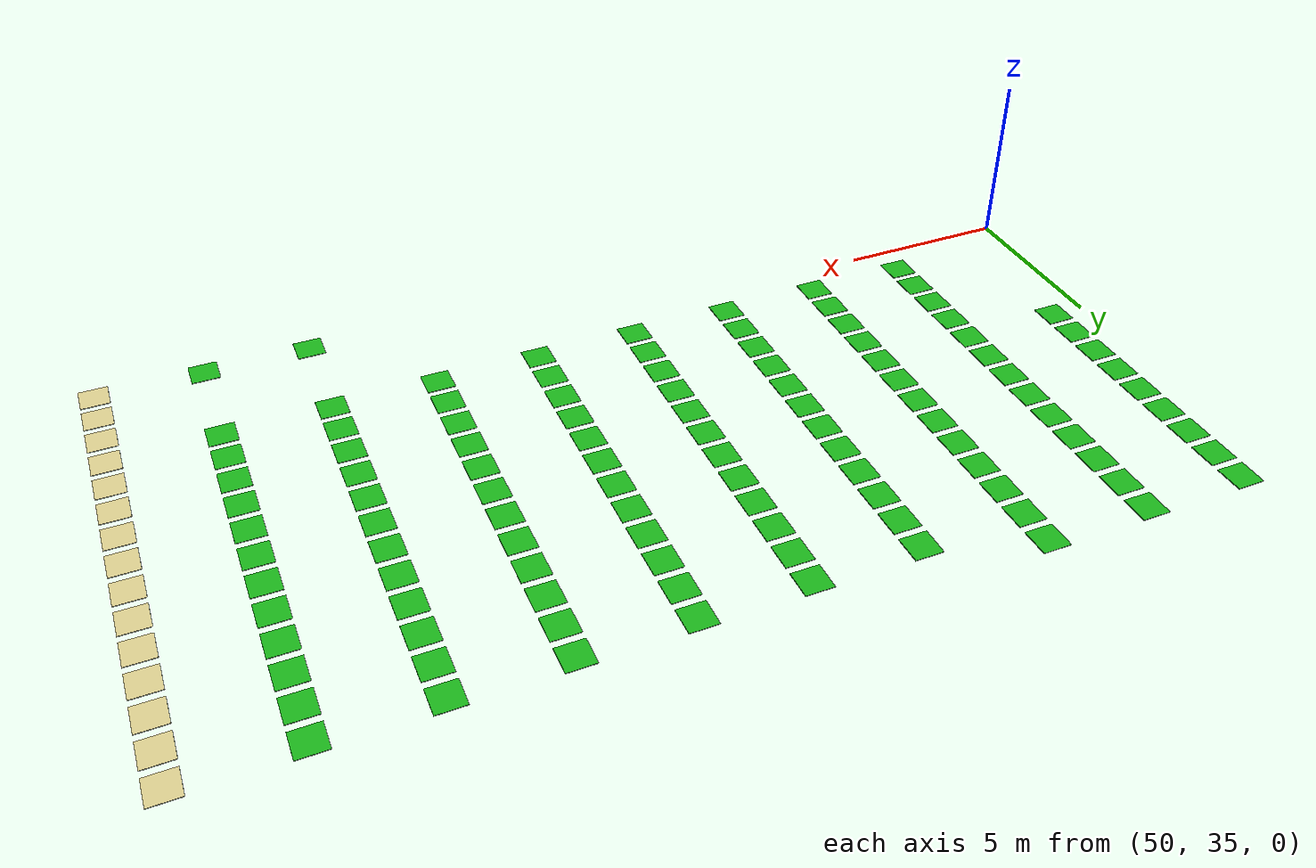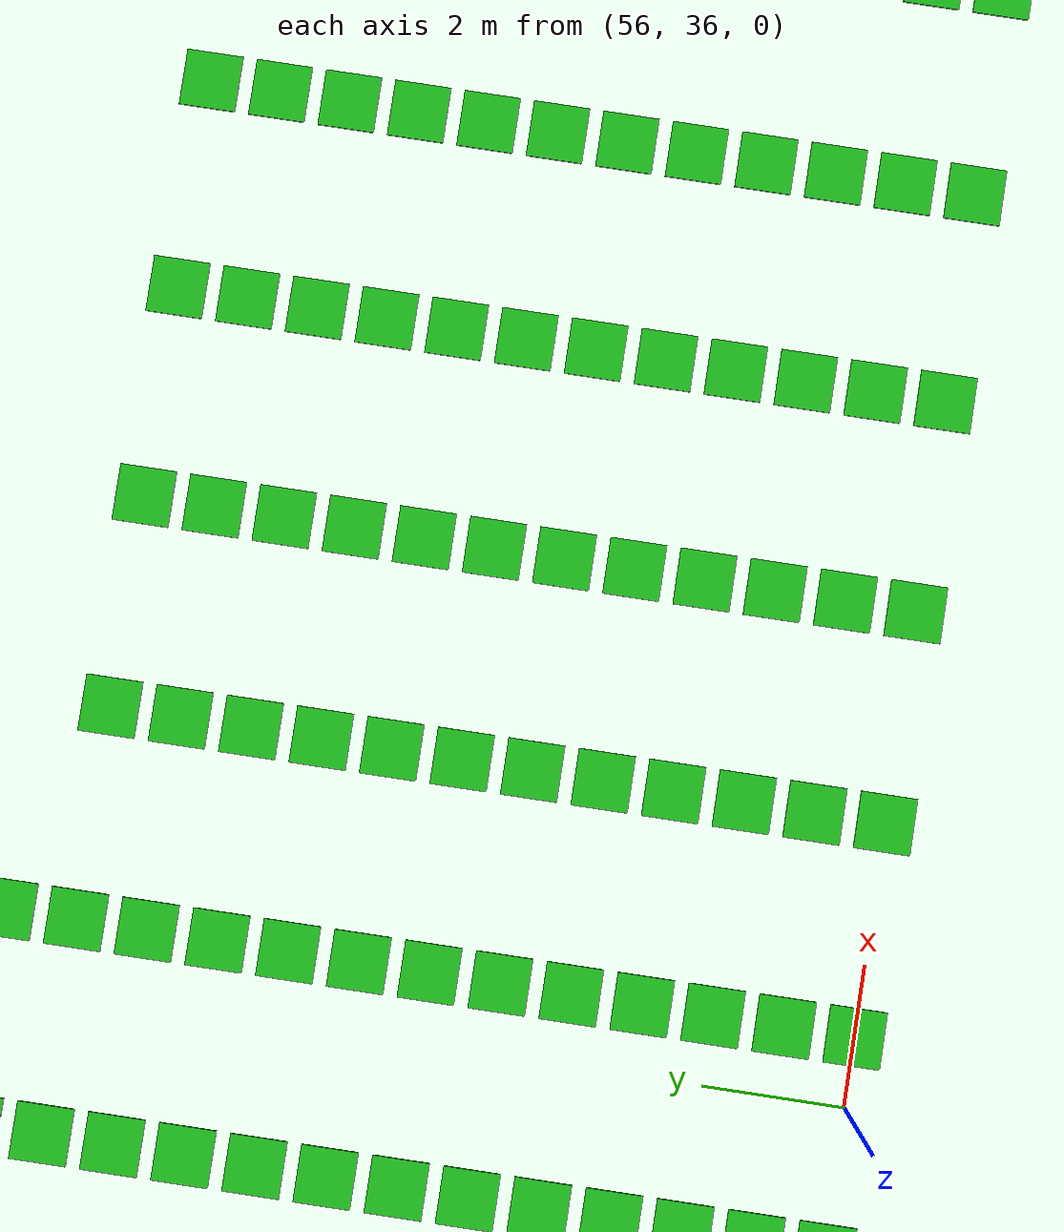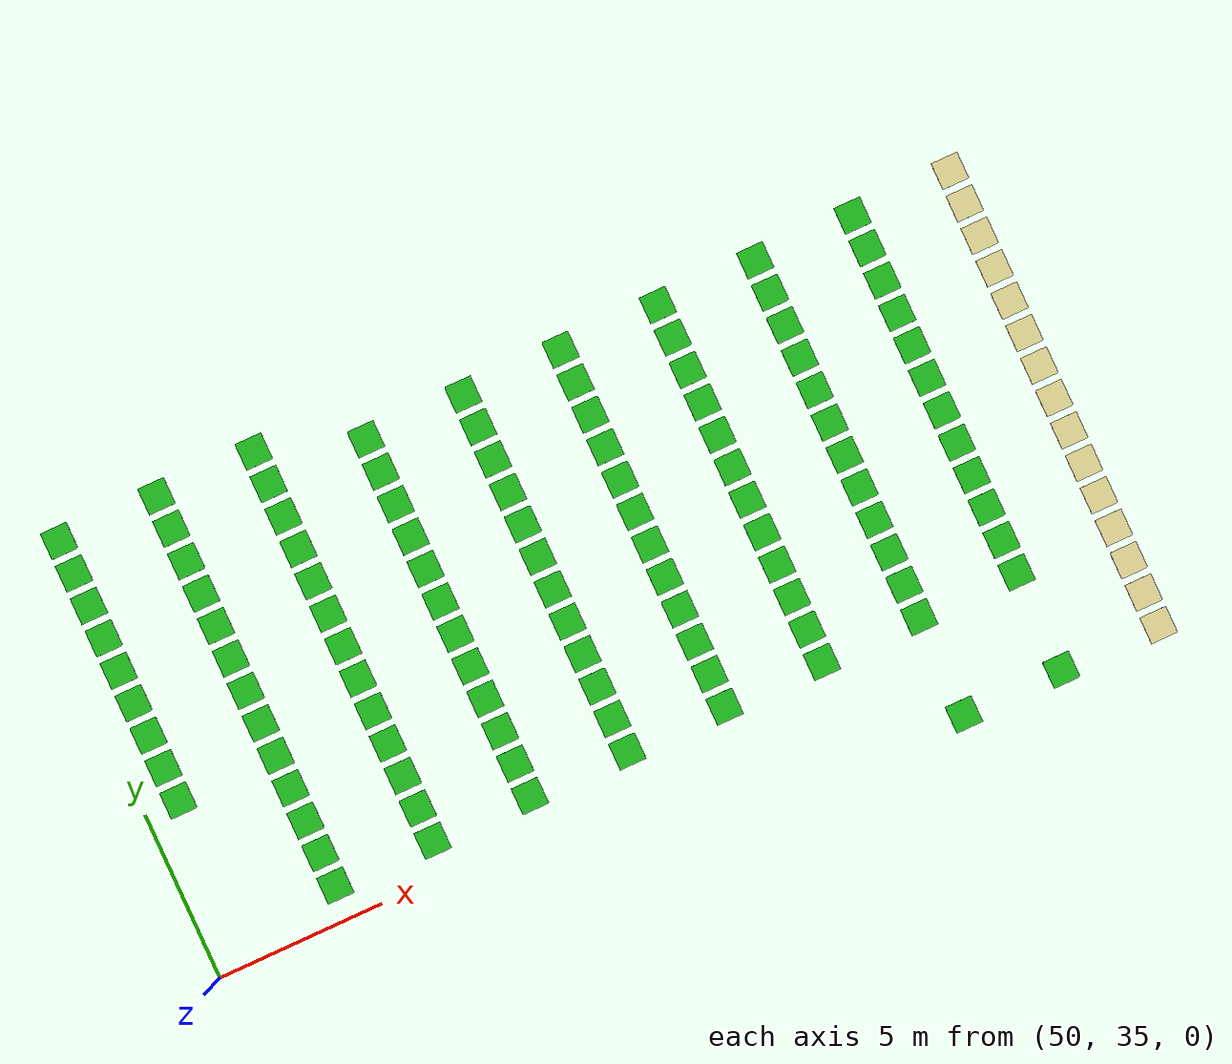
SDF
<sdf version="1.10">
 <world name="my_map">
  <model name="shelf_1192">
   <static>true</static>
   <pose>51.0
        48.0
        0.02
        0 0 0</pose>
   <link name="link">
    <visual name="visual">
     <geometry><box><size>0.8
                0.8
                0.02</size></box></geometry>
     <material><ambient>0.10 0.70 0.10 1</ambient><diffuse>0.10 0.70 0.10 1</diffuse></material>
    </visual>
   </link>
  </model>
  <model name="shelf_1193">
   <static>true</static>
   <pose>54.0
        48.0
        0.02
        0 0 0</pose>
   <link name="link">
    <visual name="visual">
     <geometry><box><size>0.8
                0.8
                0.02</size></box></geometry>
     <material><ambient>0.10 0.70 0.10 1</ambient><diffuse>0.10 0.70 0.10 1</diffuse></material>
    </visual>
   </link>
  </model>
  <model name="shelf_1194">
   <static>true</static>
   <pose>57.0
        48.0
        0.02
        0 0 0</pose>
   <link name="link">
    <visual name="visual">
     <geometry><box><size>0.8
                0.8
                0.02</size></box></geometry>
     <material><ambient>0.10 0.70 0.10 1</ambient><diffuse>0.10 0.70 0.10 1</diffuse></material>
    </visual>
   </link>
  </model>
  <model name="shelf_1217">
   <static>true</static>
   <pose>51.0
        47.0
        0.02
        0 0 0</pose>
   <link name="link">
    <visual name="visual">
     <geometry><box><size>0.8
                0.8
                0.02</size></box></geometry>
     <material><ambient>0.10 0.70 0.10 1</ambient><diffuse>0.10 0.70 0.10 1</diffuse></material>
    </visual>
   </link>
  </model>
  <model name="shelf_1218">
   <static>true</static>
   <pose>54.0
        47.0
        0.02
        0 0 0</pose>
   <link name="link">
    <visual name="visual">
     <geometry><box><size>0.8
                0.8
                0.02</size></box></geometry>
     <material><ambient>0.10 0.70 0.10 1</ambient><diffuse>0.10 0.70 0.10 1</diffuse></material>
    </visual>
   </link>
  </model>
  <model name="shelf_1219">
   <static>true</static>
   <pose>57.0
        47.0
        0.02
        0 0 0</pose>
   <link name="link">
    <visual name="visual">
     <geometry><box><size>0.8
                0.8
                0.02</size></box></geometry>
     <material><ambient>0.10 0.70 0.10 1</ambient><diffuse>0.10 0.70 0.10 1</diffuse></material>
    </visual>
   </link>
  </model>
  <model name="shelf_1220">
   <static>true</static>
   <pose>60.0
        47.0
        0.02
        0 0 0</pose>
   <link name="link">
    <visual name="visual">
     <geometry><box><size>0.8
                0.8
                0.02</size></box></geometry>
     <material><ambient>0.10 0.70 0.10 1</ambient><diffuse>0.10 0.70 0.10 1</diffuse></material>
    </visual>
   </link>
  </model>
  <model name="shelf_1221">
   <static>true</static>
   <pose>63.0
        47.0
        0.02
        0 0 0</pose>
   <link name="link">
    <visual name="visual">
     <geometry><box><size>0.8
                0.8
                0.02</size></box></geometry>
     <material><ambient>0.10 0.70 0.10 1</ambient><diffuse>0.10 0.70 0.10 1</diffuse></material>
    </visual>
   </link>
  </model>
  <model name="shelf_1222">
   <static>true</static>
   <pose>66.0
        47.0
        0.02
        0 0 0</pose>
   <link name="link">
    <visual name="visual">
     <geometry><box><size>0.8
                0.8
                0.02</size></box></geometry>
     <material><ambient>0.10 0.70 0.10 1</ambient><diffuse>0.10 0.70 0.10 1</diffuse></material>
    </visual>
   </link>
  </model>
  <model name="shelf_1223">
   <static>true</static>
   <pose>69.0
        47.0
        0.02
        0 0 0</pose>
   <link name="link">
    <visual name="visual">
     <geometry><box><size>0.8
                0.8
                0.02</size></box></geometry>
     <material><ambient>0.10 0.70 0.10 1</ambient><diffuse>0.10 0.70 0.10 1</diffuse></material>
    </visual>
   </link>
  </model>
  <model name="shelf_1224">
   <static>true</static>
   <pose>72.0
        47.0
        0.02
        0 0 0</pose>
   <link name="link">
    <visual name="visual">
     <geometry><box><size>0.8
                0.8
                0.02</size></box></geometry>
     <material><ambient>0.10 0.70 0.10 1</ambient><diffuse>0.10 0.70 0.10 1</diffuse></material>
    </visual>
   </link>
  </model>
  <model name="shelf_1225">
   <static>true</static>
   <pose>75.0
        47.0
        0.02
        0 0 0</pose>
   <link name="link">
    <visual name="visual">
     <geometry><box><size>0.8
                0.8
                0.02</size></box></geometry>
     <material><ambient>0.10 0.70 0.10 1</ambient><diffuse>0.10 0.70 0.10 1</diffuse></material>
    </visual>
   </link>
  </model>
  <model name="staging_110">
   <static>true</static>
   <pose>78.0
        47.0
        0.02
        0 0 0</pose>
   <link name="link">
    <visual name="visual">
     <geometry><box><size>0.8
                0.8
                0.02</size></box></geometry>
     <material><ambient>0.85 0.80 0.55 1</ambient><diffuse>0.85 0.80 0.55 1</diffuse></material>
    </visual>
   </link>
  </model>
  <model name="shelf_1242">
   <static>true</static>
   <pose>51.0
        46.0
        0.02
        0 0 0</pose>
   <link name="link">
    <visual name="visual">
     <geometry><box><size>0.8
                0.8
                0.02</size></box></geometry>
     <material><ambient>0.10 0.70 0.10 1</ambient><diffuse>0.10 0.70 0.10 1</diffuse></material>
    </visual>
   </link>
  </model>
  <model name="shelf_1243">
   <static>true</static>
   <pose>54.0
        46.0
        0.02
        0 0 0</pose>
   <link name="link">
    <visual name="visual">
     <geometry><box><size>0.8
                0.8
                0.02</size></box></geometry>
     <material><ambient>0.10 0.70 0.10 1</ambient><diffuse>0.10 0.70 0.10 1</diffuse></material>
    </visual>
   </link>
  </model>
  <model name="shelf_1244">
   <static>true</static>
   <pose>57.0
        46.0
        0.02
        0 0 0</pose>
   <link name="link">
    <visual name="visual">
     <geometry><box><size>0.8
                0.8
                0.02</size></box></geometry>
     <material><ambient>0.10 0.70 0.10 1</ambient><diffuse>0.10 0.70 0.10 1</diffuse></material>
    </visual>
   </link>
  </model>
  <model name="shelf_1245">
   <static>true</static>
   <pose>60.0
        46.0
        0.02
        0 0 0</pose>
   <link name="link">
    <visual name="visual">
     <geometry><box><size>0.8
                0.8
                0.02</size></box></geometry>
     <material><ambient>0.10 0.70 0.10 1</ambient><diffuse>0.10 0.70 0.10 1</diffuse></material>
    </visual>
   </link>
  </model>
  <model name="shelf_1246">
   <static>true</static>
   <pose>63.0
        46.0
        0.02
        0 0 0</pose>
   <link name="link">
    <visual name="visual">
     <geometry><box><size>0.8
                0.8
                0.02</size></box></geometry>
     <material><ambient>0.10 0.70 0.10 1</ambient><diffuse>0.10 0.70 0.10 1</diffuse></material>
    </visual>
   </link>
  </model>
  <model name="shelf_1247">
   <static>true</static>
   <pose>66.0
        46.0
        0.02
        0 0 0</pose>
   <link name="link">
    <visual name="visual">
     <geometry><box><size>0.8
                0.8
                0.02</size></box></geometry>
     <material><ambient>0.10 0.70 0.10 1</ambient><diffuse>0.10 0.70 0.10 1</diffuse></material>
    </visual>
   </link>
  </model>
  <model name="shelf_1248">
   <static>true</static>
   <pose>69.0
        46.0
        0.02
        0 0 0</pose>
   <link name="link">
    <visual name="visual">
     <geometry><box><size>0.8
                0.8
                0.02</size></box></geometry>
     <material><ambient>0.10 0.70 0.10 1</ambient><diffuse>0.10 0.70 0.10 1</diffuse></material>
    </visual>
   </link>
  </model>
  <model name="shelf_1249">
   <static>true</static>
   <pose>72.0
        46.0
        0.02
        0 0 0</pose>
   <link name="link">
    <visual name="visual">
     <geometry><box><size>0.8
                0.8
                0.02</size></box></geometry>
     <material><ambient>0.10 0.70 0.10 1</ambient><diffuse>0.10 0.70 0.10 1</diffuse></material>
    </visual>
   </link>
  </model>
  <model name="shelf_1250">
   <static>true</static>
   <pose>75.0
        46.0
        0.02
        0 0 0</pose>
   <link name="link">
    <visual name="visual">
     <geometry><box><size>0.8
                0.8
                0.02</size></box></geometry>
     <material><ambient>0.10 0.70 0.10 1</ambient><diffuse>0.10 0.70 0.10 1</diffuse></material>
    </visual>
   </link>
  </model>
  <model name="staging_112">
   <static>true</static>
   <pose>78.0
        46.0
        0.02
        0 0 0</pose>
   <link name="link">
    <visual name="visual">
     <geometry><box><size>0.8
                0.8
                0.02</size></box></geometry>
     <material><ambient>0.85 0.80 0.55 1</ambient><diffuse>0.85 0.80 0.55 1</diffuse></material>
    </visual>
   </link>
  </model>
  <model name="shelf_1267">
   <static>true</static>
   <pose>51.0
        45.0
        0.02
        0 0 0</pose>
   <link name="link">
    <visual name="visual">
     <geometry><box><size>0.8
                0.8
                0.02</size></box></geometry>
     <material><ambient>0.10 0.70 0.10 1</ambient><diffuse>0.10 0.70 0.10 1</diffuse></material>
    </visual>
   </link>
  </model>
  <model name="shelf_1268">
   <static>true</static>
   <pose>54.0
        45.0
        0.02
        0 0 0</pose>
   <link name="link">
    <visual name="visual">
     <geometry><box><size>0.8
                0.8
                0.02</size></box></geometry>
     <material><ambient>0.10 0.70 0.10 1</ambient><diffuse>0.10 0.70 0.10 1</diffuse></material>
    </visual>
   </link>
  </model>
  <model name="shelf_1269">
   <static>true</static>
   <pose>57.0
        45.0
        0.02
        0 0 0</pose>
   <link name="link">
    <visual name="visual">
     <geometry><box><size>0.8
                0.8
                0.02</size></box></geometry>
     <material><ambient>0.10 0.70 0.10 1</ambient><diffuse>0.10 0.70 0.10 1</diffuse></material>
    </visual>
   </link>
  </model>
  <model name="shelf_1270">
   <static>true</static>
   <pose>60.0
        45.0
        0.02
        0 0 0</pose>
   <link name="link">
    <visual name="visual">
     <geometry><box><size>0.8
                0.8
                0.02</size></box></geometry>
     <material><ambient>0.10 0.70 0.10 1</ambient><diffuse>0.10 0.70 0.10 1</diffuse></material>
    </visual>
   </link>
  </model>
  <model name="shelf_1271">
   <static>true</static>
   <pose>63.0
        45.0
        0.02
        0 0 0</pose>
   <link name="link">
    <visual name="visual">
     <geometry><box><size>0.8
                0.8
                0.02</size></box></geometry>
     <material><ambient>0.10 0.70 0.10 1</ambient><diffuse>0.10 0.70 0.10 1</diffuse></material>
    </visual>
   </link>
  </model>
  <model name="shelf_1272">
   <static>true</static>
   <pose>66.0
        45.0
        0.02
        0 0 0</pose>
   <link name="link">
    <visual name="visual">
     <geometry><box><size>0.8
                0.8
                0.02</size></box></geometry>
     <material><ambient>0.10 0.70 0.10 1</ambient><diffuse>0.10 0.70 0.10 1</diffuse></material>
    </visual>
   </link>
  </model>
  <model name="shelf_1273">
   <static>true</static>
   <pose>69.0
        45.0
        0.02
        0 0 0</pose>
   <link name="link">
    <visual name="visual">
     <geometry><box><size>0.8
                0.8
                0.02</size></box></geometry>
     <material><ambient>0.10 0.70 0.10 1</ambient><diffuse>0.10 0.70 0.10 1</diffuse></material>
    </visual>
   </link>
  </model>
  <model name="shelf_1274">
   <static>true</static>
   <pose>72.0
        45.0
        0.02
        0 0 0</pose>
   <link name="link">
    <visual name="visual">
     <geometry><box><size>0.8
                0.8
                0.02</size></box></geometry>
     <material><ambient>0.10 0.70 0.10 1</ambient><diffuse>0.10 0.70 0.10 1</diffuse></material>
    </visual>
   </link>
  </model>
  <model name="shelf_1275">
   <static>true</static>
   <pose>75.0
        45.0
        0.02
        0 0 0</pose>
   <link name="link">
    <visual name="visual">
     <geometry><box><size>0.8
                0.8
                0.02</size></box></geometry>
     <material><ambient>0.10 0.70 0.10 1</ambient><diffuse>0.10 0.70 0.10 1</diffuse></material>
    </visual>
   </link>
  </model>
  <model name="staging_114">
   <static>true</static>
   <pose>78.0
        45.0
        0.02
        0 0 0</pose>
   <link name="link">
    <visual name="visual">
     <geometry><box><size>0.8
                0.8
                0.02</size></box></geometry>
     <material><ambient>0.85 0.80 0.55 1</ambient><diffuse>0.85 0.80 0.55 1</diffuse></material>
    </visual>
   </link>
  </model>
  <model name="shelf_1292">
   <static>true</static>
   <pose>51.0
        44.0
        0.02
        0 0 0</pose>
   <link name="link">
    <visual name="visual">
     <geometry><box><size>0.8
                0.8
                0.02</size></box></geometry>
     <material><ambient>0.10 0.70 0.10 1</ambient><diffuse>0.10 0.70 0.10 1</diffuse></material>
    </visual>
   </link>
  </model>
  <model name="shelf_1293">
   <static>true</static>
   <pose>54.0
        44.0
        0.02
        0 0 0</pose>
   <link name="link">
    <visual name="visual">
     <geometry><box><size>0.8
                0.8
                0.02</size></box></geometry>
     <material><ambient>0.10 0.70 0.10 1</ambient><diffuse>0.10 0.70 0.10 1</diffuse></material>
    </visual>
   </link>
  </model>
  <model name="shelf_1294">
   <static>true</static>
   <pose>57.0
        44.0
        0.02
        0 0 0</pose>
   <link name="link">
    <visual name="visual">
     <geometry><box><size>0.8
                0.8
                0.02</size></box></geometry>
     <material><ambient>0.10 0.70 0.10 1</ambient><diffuse>0.10 0.70 0.10 1</diffuse></material>
    </visual>
   </link>
  </model>
  <model name="shelf_1295">
   <static>true</static>
   <pose>60.0
        44.0
        0.02
        0 0 0</pose>
   <link name="link">
    <visual name="visual">
     <geometry><box><size>0.8
                0.8
                0.02</size></box></geometry>
     <material><ambient>0.10 0.70 0.10 1</ambient><diffuse>0.10 0.70 0.10 1</diffuse></material>
    </visual>
   </link>
  </model>
  <model name="shelf_1296">
   <static>true</static>
   <pose>63.0
        44.0
        0.02
        0 0 0</pose>
   <link name="link">
    <visual name="visual">
     <geometry><box><size>0.8
                0.8
                0.02</size></box></geometry>
     <material><ambient>0.10 0.70 0.10 1</ambient><diffuse>0.10 0.70 0.10 1</diffuse></material>
    </visual>
   </link>
  </model>
  <model name="shelf_1297">
   <static>true</static>
   <pose>66.0
        44.0
        0.02
        0 0 0</pose>
   <link name="link">
    <visual name="visual">
     <geometry><box><size>0.8
                0.8
                0.02</size></box></geometry>
     <material><ambient>0.10 0.70 0.10 1</ambient><diffuse>0.10 0.70 0.10 1</diffuse></material>
    </visual>
   </link>
  </model>
  <model name="shelf_1298">
   <static>true</static>
   <pose>69.0
        44.0
        0.02
        0 0 0</pose>
   <link name="link">
    <visual name="visual">
     <geometry><box><size>0.8
                0.8
                0.02</size></box></geometry>
     <material><ambient>0.10 0.70 0.10 1</ambient><diffuse>0.10 0.70 0.10 1</diffuse></material>
    </visual>
   </link>
  </model>
  <model name="shelf_1299">
   <static>true</static>
   <pose>72.0
        44.0
        0.02
        0 0 0</pose>
   <link name="link">
    <visual name="visual">
     <geometry><box><size>0.8
                0.8
                0.02</size></box></geometry>
     <material><ambient>0.10 0.70 0.10 1</ambient><diffuse>0.10 0.70 0.10 1</diffuse></material>
    </visual>
   </link>
  </model>
  <model name="shelf_1300">
   <static>true</static>
   <pose>75.0
        44.0
        0.02
        0 0 0</pose>
   <link name="link">
    <visual name="visual">
     <geometry><box><size>0.8
                0.8
                0.02</size></box></geometry>
     <material><ambient>0.10 0.70 0.10 1</ambient><diffuse>0.10 0.70 0.10 1</diffuse></material>
    </visual>
   </link>
  </model>
  <model name="staging_116">
   <static>true</static>
   <pose>78.0
        44.0
        0.02
        0 0 0</pose>
   <link name="link">
    <visual name="visual">
     <geometry><box><size>0.8
                0.8
                0.02</size></box></geometry>
     <material><ambient>0.85 0.80 0.55 1</ambient><diffuse>0.85 0.80 0.55 1</diffuse></material>
    </visual>
   </link>
  </model>
  <model name="shelf_1317">
   <static>true</static>
   <pose>51.0
        43.0
        0.02
        0 0 0</pose>
   <link name="link">
    <visual name="visual">
     <geometry><box><size>0.8
                0.8
                0.02</size></box></geometry>
     <material><ambient>0.10 0.70 0.10 1</ambient><diffuse>0.10 0.70 0.10 1</diffuse></material>
    </visual>
   </link>
  </model>
  <model name="shelf_1318">
   <static>true</static>
   <pose>54.0
        43.0
        0.02
        0 0 0</pose>
   <link name="link">
    <visual name="visual">
     <geometry><box><size>0.8
                0.8
                0.02</size></box></geometry>
     <material><ambient>0.10 0.70 0.10 1</ambient><diffuse>0.10 0.70 0.10 1</diffuse></material>
    </visual>
   </link>
  </model>
  <model name="shelf_1319">
   <static>true</static>
   <pose>57.0
        43.0
        0.02
        0 0 0</pose>
   <link name="link">
    <visual name="visual">
     <geometry><box><size>0.8
                0.8
                0.02</size></box></geometry>
     <material><ambient>0.10 0.70 0.10 1</ambient><diffuse>0.10 0.70 0.10 1</diffuse></material>
    </visual>
   </link>
  </model>
  <model name="shelf_1320">
   <static>true</static>
   <pose>60.0
        43.0
        0.02
        0 0 0</pose>
   <link name="link">
    <visual name="visual">
     <geometry><box><size>0.8
                0.8
                0.02</size></box></geometry>
     <material><ambient>0.10 0.70 0.10 1</ambient><diffuse>0.10 0.70 0.10 1</diffuse></material>
    </visual>
   </link>
  </model>
  <model name="shelf_1321">
   <static>true</static>
   <pose>63.0
        43.0
        0.02
        0 0 0</pose>
   <link name="link">
    <visual name="visual">
     <geometry><box><size>0.8
                0.8
                0.02</size></box></geometry>
     <material><ambient>0.10 0.70 0.10 1</ambient><diffuse>0.10 0.70 0.10 1</diffuse></material>
    </visual>
   </link>
  </model>
  <model name="shelf_1322">
   <static>true</static>
   <pose>66.0
        43.0
        0.02
        0 0 0</pose>
   <link name="link">
    <visual name="visual">
     <geometry><box><size>0.8
                0.8
                0.02</size></box></geometry>
     <material><ambient>0.10 0.70 0.10 1</ambient><diffuse>0.10 0.70 0.10 1</diffuse></material>
    </visual>
   </link>
  </model>
  <model name="shelf_1323">
   <static>true</static>
   <pose>69.0
        43.0
        0.02
        0 0 0</pose>
   <link name="link">
    <visual name="visual">
     <geometry><box><size>0.8
                0.8
                0.02</size></box></geometry>
     <material><ambient>0.10 0.70 0.10 1</ambient><diffuse>0.10 0.70 0.10 1</diffuse></material>
    </visual>
   </link>
  </model>
  <model name="shelf_1324">
   <static>true</static>
   <pose>72.0
        43.0
        0.02
        0 0 0</pose>
   <link name="link">
    <visual name="visual">
     <geometry><box><size>0.8
                0.8
                0.02</size></box></geometry>
     <material><ambient>0.10 0.70 0.10 1</ambient><diffuse>0.10 0.70 0.10 1</diffuse></material>
    </visual>
   </link>
  </model>
  <model name="shelf_1325">
   <static>true</static>
   <pose>75.0
        43.0
        0.02
        0 0 0</pose>
   <link name="link">
    <visual name="visual">
     <geometry><box><size>0.8
                0.8
                0.02</size></box></geometry>
     <material><ambient>0.10 0.70 0.10 1</ambient><diffuse>0.10 0.70 0.10 1</diffuse></material>
    </visual>
   </link>
  </model>
  <model name="staging_118">
   <static>true</static>
   <pose>78.0
        43.0
        0.02
        0 0 0</pose>
   <link name="link">
    <visual name="visual">
     <geometry><box><size>0.8
                0.8
                0.02</size></box></geometry>
     <material><ambient>0.85 0.80 0.55 1</ambient><diffuse>0.85 0.80 0.55 1</diffuse></material>
    </visual>
   </link>
  </model>
  <model name="shelf_1342">
   <static>true</static>
   <pose>51.0
        42.0
        0.02
        0 0 0</pose>
   <link name="link">
    <visual name="visual">
     <geometry><box><size>0.8
                0.8
                0.02</size></box></geometry>
     <material><ambient>0.10 0.70 0.10 1</ambient><diffuse>0.10 0.70 0.10 1</diffuse></material>
    </visual>
   </link>
  </model>
  <model name="shelf_1343">
   <static>true</static>
   <pose>54.0
        42.0
        0.02
        0 0 0</pose>
   <link name="link">
    <visual name="visual">
     <geometry><box><size>0.8
                0.8
                0.02</size></box></geometry>
     <material><ambient>0.10 0.70 0.10 1</ambient><diffuse>0.10 0.70 0.10 1</diffuse></material>
    </visual>
   </link>
  </model>
  <model name="shelf_1344">
   <static>true</static>
   <pose>57.0
        42.0
        0.02
        0 0 0</pose>
   <link name="link">
    <visual name="visual">
     <geometry><box><size>0.8
                0.8
                0.02</size></box></geometry>
     <material><ambient>0.10 0.70 0.10 1</ambient><diffuse>0.10 0.70 0.10 1</diffuse></material>
    </visual>
   </link>
  </model>
  <model name="shelf_1345">
   <static>true</static>
   <pose>60.0
        42.0
        0.02
        0 0 0</pose>
   <link name="link">
    <visual name="visual">
     <geometry><box><size>0.8
                0.8
                0.02</size></box></geometry>
     <material><ambient>0.10 0.70 0.10 1</ambient><diffuse>0.10 0.70 0.10 1</diffuse></material>
    </visual>
   </link>
  </model>
  <model name="shelf_1346">
   <static>true</static>
   <pose>63.0
        42.0
        0.02
        0 0 0</pose>
   <link name="link">
    <visual name="visual">
     <geometry><box><size>0.8
                0.8
                0.02</size></box></geometry>
     <material><ambient>0.10 0.70 0.10 1</ambient><diffuse>0.10 0.70 0.10 1</diffuse></material>
    </visual>
   </link>
  </model>
  <model name="shelf_1347">
   <static>true</static>
   <pose>66.0
        42.0
        0.02
        0 0 0</pose>
   <link name="link">
    <visual name="visual">
     <geometry><box><size>0.8
                0.8
                0.02</size></box></geometry>
     <material><ambient>0.10 0.70 0.10 1</ambient><diffuse>0.10 0.70 0.10 1</diffuse></material>
    </visual>
   </link>
  </model>
  <model name="shelf_1348">
   <static>true</static>
   <pose>69.0
        42.0
        0.02
        0 0 0</pose>
   <link name="link">
    <visual name="visual">
     <geometry><box><size>0.8
                0.8
                0.02</size></box></geometry>
     <material><ambient>0.10 0.70 0.10 1</ambient><diffuse>0.10 0.70 0.10 1</diffuse></material>
    </visual>
   </link>
  </model>
  <model name="shelf_1349">
   <static>true</static>
   <pose>72.0
        42.0
        0.02
        0 0 0</pose>
   <link name="link">
    <visual name="visual">
     <geometry><box><size>0.8
                0.8
                0.02</size></box></geometry>
     <material><ambient>0.10 0.70 0.10 1</ambient><diffuse>0.10 0.70 0.10 1</diffuse></material>
    </visual>
   </link>
  </model>
  <model name="shelf_1350">
   <static>true</static>
   <pose>75.0
        42.0
        0.02
        0 0 0</pose>
   <link name="link">
    <visual name="visual">
     <geometry><box><size>0.8
                0.8
                0.02</size></box></geometry>
     <material><ambient>0.10 0.70 0.10 1</ambient><diffuse>0.10 0.70 0.10 1</diffuse></material>
    </visual>
   </link>
  </model>
  <model name="staging_120">
   <static>true</static>
   <pose>78.0
        42.0
        0.02
        0 0 0</pose>
   <link name="link">
    <visual name="visual">
     <geometry><box><size>0.8
                0.8
                0.02</size></box></geometry>
     <material><ambient>0.85 0.80 0.55 1</ambient><diffuse>0.85 0.80 0.55 1</diffuse></material>
    </visual>
   </link>
  </model>
  <model name="shelf_1367">
   <static>true</static>
   <pose>51.0
        41.0
        0.02
        0 0 0</pose>
   <link name="link">
    <visual name="visual">
     <geometry><box><size>0.8
                0.8
                0.02</size></box></geometry>
     <material><ambient>0.10 0.70 0.10 1</ambient><diffuse>0.10 0.70 0.10 1</diffuse></material>
    </visual>
   </link>
  </model>
  <model name="shelf_1368">
   <static>true</static>
   <pose>54.0
        41.0
        0.02
        0 0 0</pose>
   <link name="link">
    <visual name="visual">
     <geometry><box><size>0.8
                0.8
                0.02</size></box></geometry>
     <material><ambient>0.10 0.70 0.10 1</ambient><diffuse>0.10 0.70 0.10 1</diffuse></material>
    </visual>
   </link>
  </model>
  <model name="shelf_1369">
   <static>true</static>
   <pose>57.0
        41.0
        0.02
        0 0 0</pose>
   <link name="link">
    <visual name="visual">
     <geometry><box><size>0.8
                0.8
                0.02</size></box></geometry>
     <material><ambient>0.10 0.70 0.10 1</ambient><diffuse>0.10 0.70 0.10 1</diffuse></material>
    </visual>
   </link>
  </model>
  <model name="shelf_1370">
   <static>true</static>
   <pose>60.0
        41.0
        0.02
        0 0 0</pose>
   <link name="link">
    <visual name="visual">
     <geometry><box><size>0.8
                0.8
                0.02</size></box></geometry>
     <material><ambient>0.10 0.70 0.10 1</ambient><diffuse>0.10 0.70 0.10 1</diffuse></material>
    </visual>
   </link>
  </model>
  <model name="shelf_1371">
   <static>true</static>
   <pose>63.0
        41.0
        0.02
        0 0 0</pose>
   <link name="link">
    <visual name="visual">
     <geometry><box><size>0.8
                0.8
                0.02</size></box></geometry>
     <material><ambient>0.10 0.70 0.10 1</ambient><diffuse>0.10 0.70 0.10 1</diffuse></material>
    </visual>
   </link>
  </model>
  <model name="shelf_1372">
   <static>true</static>
   <pose>66.0
        41.0
        0.02
        0 0 0</pose>
   <link name="link">
    <visual name="visual">
     <geometry><box><size>0.8
                0.8
                0.02</size></box></geometry>
     <material><ambient>0.10 0.70 0.10 1</ambient><diffuse>0.10 0.70 0.10 1</diffuse></material>
    </visual>
   </link>
  </model>
  <model name="shelf_1373">
   <static>true</static>
   <pose>69.0
        41.0
        0.02
        0 0 0</pose>
   <link name="link">
    <visual name="visual">
     <geometry><box><size>0.8
                0.8
                0.02</size></box></geometry>
     <material><ambient>0.10 0.70 0.10 1</ambient><diffuse>0.10 0.70 0.10 1</diffuse></material>
    </visual>
   </link>
  </model>
  <model name="shelf_1374">
   <static>true</static>
   <pose>72.0
        41.0
        0.02
        0 0 0</pose>
   <link name="link">
    <visual name="visual">
     <geometry><box><size>0.8
                0.8
                0.02</size></box></geometry>
     <material><ambient>0.10 0.70 0.10 1</ambient><diffuse>0.10 0.70 0.10 1</diffuse></material>
    </visual>
   </link>
  </model>
  <model name="shelf_1375">
   <static>true</static>
   <pose>75.0
        41.0
        0.02
        0 0 0</pose>
   <link name="link">
    <visual name="visual">
     <geometry><box><size>0.8
                0.8
                0.02</size></box></geometry>
     <material><ambient>0.10 0.70 0.10 1</ambient><diffuse>0.10 0.70 0.10 1</diffuse></material>
    </visual>
   </link>
  </model>
  <model name="staging_122">
   <static>true</static>
   <pose>78.0
        41.0
        0.02
        0 0 0</pose>
   <link name="link">
    <visual name="visual">
     <geometry><box><size>0.8
                0.8
                0.02</size></box></geometry>
     <material><ambient>0.85 0.80 0.55 1</ambient><diffuse>0.85 0.80 0.55 1</diffuse></material>
    </visual>
   </link>
  </model>
  <model name="shelf_1392">
   <static>true</static>
   <pose>51.0
        40.0
        0.02
        0 0 0</pose>
   <link name="link">
    <visual name="visual">
     <geometry><box><size>0.8
                0.8
                0.02</size></box></geometry>
     <material><ambient>0.10 0.70 0.10 1</ambient><diffuse>0.10 0.70 0.10 1</diffuse></material>
    </visual>
   </link>
  </model>
  <model name="shelf_1393">
   <static>true</static>
   <pose>54.0
        40.0
        0.02
        0 0 0</pose>
   <link name="link">
    <visual name="visual">
     <geometry><box><size>0.8
                0.8
                0.02</size></box></geometry>
     <material><ambient>0.10 0.70 0.10 1</ambient><diffuse>0.10 0.70 0.10 1</diffuse></material>
    </visual>
   </link>
  </model>
  <model name="shelf_1394">
   <static>true</static>
   <pose>57.0
        40.0
        0.02
        0 0 0</pose>
   <link name="link">
    <visual name="visual">
     <geometry><box><size>0.8
                0.8
                0.02</size></box></geometry>
     <material><ambient>0.10 0.70 0.10 1</ambient><diffuse>0.10 0.70 0.10 1</diffuse></material>
    </visual>
   </link>
  </model>
  <model name="shelf_1395">
   <static>true</static>
   <pose>60.0
        40.0
        0.02
        0 0 0</pose>
   <link name="link">
    <visual name="visual">
     <geometry><box><size>0.8
                0.8
                0.02</size></box></geometry>
     <material><ambient>0.10 0.70 0.10 1</ambient><diffuse>0.10 0.70 0.10 1</diffuse></material>
    </visual>
   </link>
  </model>
  <model name="shelf_1396">
   <static>true</static>
   <pose>63.0
        40.0
        0.02
        0 0 0</pose>
   <link name="link">
    <visual name="visual">
     <geometry><box><size>0.8
                0.8
                0.02</size></box></geometry>
     <material><ambient>0.10 0.70 0.10 1</ambient><diffuse>0.10 0.70 0.10 1</diffuse></material>
    </visual>
   </link>
  </model>
  <model name="shelf_1397">
   <static>true</static>
   <pose>66.0
        40.0
        0.02
        0 0 0</pose>
   <link name="link">
    <visual name="visual">
     <geometry><box><size>0.8
                0.8
                0.02</size></box></geometry>
     <material><ambient>0.10 0.70 0.10 1</ambient><diffuse>0.10 0.70 0.10 1</diffuse></material>
    </visual>
   </link>
  </model>
  <model name="shelf_1398">
   <static>true</static>
   <pose>69.0
        40.0
        0.02
        0 0 0</pose>
   <link name="link">
    <visual name="visual">
     <geometry><box><size>0.8
                0.8
                0.02</size></box></geometry>
     <material><ambient>0.10 0.70 0.10 1</ambient><diffuse>0.10 0.70 0.10 1</diffuse></material>
    </visual>
   </link>
  </model>
  <model name="shelf_1399">
   <static>true</static>
   <pose>72.0
        40.0
        0.02
        0 0 0</pose>
   <link name="link">
    <visual name="visual">
     <geometry><box><size>0.8
                0.8
                0.02</size></box></geometry>
     <material><ambient>0.10 0.70 0.10 1</ambient><diffuse>0.10 0.70 0.10 1</diffuse></material>
    </visual>
   </link>
  </model>
  <model name="shelf_1400">
   <static>true</static>
   <pose>75.0
        40.0
        0.02
        0 0 0</pose>
   <link name="link">
    <visual name="visual">
     <geometry><box><size>0.8
                0.8
                0.02</size></box></geometry>
     <material><ambient>0.10 0.70 0.10 1</ambient><diffuse>0.10 0.70 0.10 1</diffuse></material>
    </visual>
   </link>
  </model>
  <model name="staging_124">
   <static>true</static>
   <pose>78.0
        40.0
        0.02
        0 0 0</pose>
   <link name="link">
    <visual name="visual">
     <geometry><box><size>0.8
                0.8
                0.02</size></box></geometry>
     <material><ambient>0.85 0.80 0.55 1</ambient><diffuse>0.85 0.80 0.55 1</diffuse></material>
    </visual>
   </link>
  </model>
  <model name="shelf_1418">
   <static>true</static>
   <pose>54.0
        39.0
        0.02
        0 0 0</pose>
   <link name="link">
    <visual name="visual">
     <geometry><box><size>0.8
                0.8
                0.02</size></box></geometry>
     <material><ambient>0.10 0.70 0.10 1</ambient><diffuse>0.10 0.70 0.10 1</diffuse></material>
    </visual>
   </link>
  </model>
  <model name="shelf_1419">
   <static>true</static>
   <pose>57.0
        39.0
        0.02
        0 0 0</pose>
   <link name="link">
    <visual name="visual">
     <geometry><box><size>0.8
                0.8
                0.02</size></box></geometry>
     <material><ambient>0.10 0.70 0.10 1</ambient><diffuse>0.10 0.70 0.10 1</diffuse></material>
    </visual>
   </link>
  </model>
  <model name="shelf_1420">
   <static>true</static>
   <pose>60.0
        39.0
        0.02
        0 0 0</pose>
   <link name="link">
    <visual name="visual">
     <geometry><box><size>0.8
                0.8
                0.02</size></box></geometry>
     <material><ambient>0.10 0.70 0.10 1</ambient><diffuse>0.10 0.70 0.10 1</diffuse></material>
    </visual>
   </link>
  </model>
  <model name="shelf_1421">
   <static>true</static>
   <pose>63.0
        39.0
        0.02
        0 0 0</pose>
   <link name="link">
    <visual name="visual">
     <geometry><box><size>0.8
                0.8
                0.02</size></box></geometry>
     <material><ambient>0.10 0.70 0.10 1</ambient><diffuse>0.10 0.70 0.10 1</diffuse></material>
    </visual>
   </link>
  </model>
  <model name="shelf_1422">
   <static>true</static>
   <pose>66.0
        39.0
        0.02
        0 0 0</pose>
   <link name="link">
    <visual name="visual">
     <geometry><box><size>0.8
                0.8
                0.02</size></box></geometry>
     <material><ambient>0.10 0.70 0.10 1</ambient><diffuse>0.10 0.70 0.10 1</diffuse></material>
    </visual>
   </link>
  </model>
  <model name="shelf_1423">
   <static>true</static>
   <pose>69.0
        39.0
        0.02
        0 0 0</pose>
   <link name="link">
    <visual name="visual">
     <geometry><box><size>0.8
                0.8
                0.02</size></box></geometry>
     <material><ambient>0.10 0.70 0.10 1</ambient><diffuse>0.10 0.70 0.10 1</diffuse></material>
    </visual>
   </link>
  </model>
  <model name="shelf_1424">
   <static>true</static>
   <pose>72.0
        39.0
        0.02
        0 0 0</pose>
   <link name="link">
    <visual name="visual">
     <geometry><box><size>0.8
                0.8
                0.02</size></box></geometry>
     <material><ambient>0.10 0.70 0.10 1</ambient><diffuse>0.10 0.70 0.10 1</diffuse></material>
    </visual>
   </link>
  </model>
  <model name="shelf_1425">
   <static>true</static>
   <pose>75.0
        39.0
        0.02
        0 0 0</pose>
   <link name="link">
    <visual name="visual">
     <geometry><box><size>0.8
                0.8
                0.02</size></box></geometry>
     <material><ambient>0.10 0.70 0.10 1</ambient><diffuse>0.10 0.70 0.10 1</diffuse></material>
    </visual>
   </link>
  </model>
  <model name="staging_126">
   <static>true</static>
   <pose>78.0
        39.0
        0.02
        0 0 0</pose>
   <link name="link">
    <visual name="visual">
     <geometry><box><size>0.8
                0.8
                0.02</size></box></geometry>
     <material><ambient>0.85 0.80 0.55 1</ambient><diffuse>0.85 0.80 0.55 1</diffuse></material>
    </visual>
   </link>
  </model>
  <model name="shelf_1443">
   <static>true</static>
   <pose>54.0
        38.0
        0.02
        0 0 0</pose>
   <link name="link">
    <visual name="visual">
     <geometry><box><size>0.8
                0.8
                0.02</size></box></geometry>
     <material><ambient>0.10 0.70 0.10 1</ambient><diffuse>0.10 0.70 0.10 1</diffuse></material>
    </visual>
   </link>
  </model>
  <model name="shelf_1444">
   <static>true</static>
   <pose>57.0
        38.0
        0.02
        0 0 0</pose>
   <link name="link">
    <visual name="visual">
     <geometry><box><size>0.8
                0.8
                0.02</size></box></geometry>
     <material><ambient>0.10 0.70 0.10 1</ambient><diffuse>0.10 0.70 0.10 1</diffuse></material>
    </visual>
   </link>
  </model>
  <model name="shelf_1445">
   <static>true</static>
   <pose>60.0
        38.0
        0.02
        0 0 0</pose>
   <link name="link">
    <visual name="visual">
     <geometry><box><size>0.8
                0.8
                0.02</size></box></geometry>
     <material><ambient>0.10 0.70 0.10 1</ambient><diffuse>0.10 0.70 0.10 1</diffuse></material>
    </visual>
   </link>
  </model>
  <model name="shelf_1446">
   <static>true</static>
   <pose>63.0
        38.0
        0.02
        0 0 0</pose>
   <link name="link">
    <visual name="visual">
     <geometry><box><size>0.8
                0.8
                0.02</size></box></geometry>
     <material><ambient>0.10 0.70 0.10 1</ambient><diffuse>0.10 0.70 0.10 1</diffuse></material>
    </visual>
   </link>
  </model>
  <model name="shelf_1447">
   <static>true</static>
   <pose>66.0
        38.0
        0.02
        0 0 0</pose>
   <link name="link">
    <visual name="visual">
     <geometry><box><size>0.8
                0.8
                0.02</size></box></geometry>
     <material><ambient>0.10 0.70 0.10 1</ambient><diffuse>0.10 0.70 0.10 1</diffuse></material>
    </visual>
   </link>
  </model>
  <model name="shelf_1448">
   <static>true</static>
   <pose>69.0
        38.0
        0.02
        0 0 0</pose>
   <link name="link">
    <visual name="visual">
     <geometry><box><size>0.8
                0.8
                0.02</size></box></geometry>
     <material><ambient>0.10 0.70 0.10 1</ambient><diffuse>0.10 0.70 0.10 1</diffuse></material>
    </visual>
   </link>
  </model>
  <model name="shelf_1449">
   <static>true</static>
   <pose>72.0
        38.0
        0.02
        0 0 0</pose>
   <link name="link">
    <visual name="visual">
     <geometry><box><size>0.8
                0.8
                0.02</size></box></geometry>
     <material><ambient>0.10 0.70 0.10 1</ambient><diffuse>0.10 0.70 0.10 1</diffuse></material>
    </visual>
   </link>
  </model>
  <model name="shelf_1450">
   <static>true</static>
   <pose>75.0
        38.0
        0.02
        0 0 0</pose>
   <link name="link">
    <visual name="visual">
     <geometry><box><size>0.8
                0.8
                0.02</size></box></geometry>
     <material><ambient>0.10 0.70 0.10 1</ambient><diffuse>0.10 0.70 0.10 1</diffuse></material>
    </visual>
   </link>
  </model>
  <model name="staging_128">
   <static>true</static>
   <pose>78.0
        38.0
        0.02
        0 0 0</pose>
   <link name="link">
    <visual name="visual">
     <geometry><box><size>0.8
                0.8
                0.02</size></box></geometry>
     <material><ambient>0.85 0.80 0.55 1</ambient><diffuse>0.85 0.80 0.55 1</diffuse></material>
    </visual>
   </link>
  </model>
  <model name="shelf_1468">
   <static>true</static>
   <pose>54.0
        37.0
        0.02
        0 0 0</pose>
   <link name="link">
    <visual name="visual">
     <geometry><box><size>0.8
                0.8
                0.02</size></box></geometry>
     <material><ambient>0.10 0.70 0.10 1</ambient><diffuse>0.10 0.70 0.10 1</diffuse></material>
    </visual>
   </link>
  </model>
  <model name="shelf_1469">
   <static>true</static>
   <pose>57.0
        37.0
        0.02
        0 0 0</pose>
   <link name="link">
    <visual name="visual">
     <geometry><box><size>0.8
                0.8
                0.02</size></box></geometry>
     <material><ambient>0.10 0.70 0.10 1</ambient><diffuse>0.10 0.70 0.10 1</diffuse></material>
    </visual>
   </link>
  </model>
  <model name="shelf_1470">
   <static>true</static>
   <pose>60.0
        37.0
        0.02
        0 0 0</pose>
   <link name="link">
    <visual name="visual">
     <geometry><box><size>0.8
                0.8
                0.02</size></box></geometry>
     <material><ambient>0.10 0.70 0.10 1</ambient><diffuse>0.10 0.70 0.10 1</diffuse></material>
    </visual>
   </link>
  </model>
  <model name="shelf_1471">
   <static>true</static>
   <pose>63.0
        37.0
        0.02
        0 0 0</pose>
   <link name="link">
    <visual name="visual">
     <geometry><box><size>0.8
                0.8
                0.02</size></box></geometry>
     <material><ambient>0.10 0.70 0.10 1</ambient><diffuse>0.10 0.70 0.10 1</diffuse></material>
    </visual>
   </link>
  </model>
  <model name="shelf_1472">
   <static>true</static>
   <pose>66.0
        37.0
        0.02
        0 0 0</pose>
   <link name="link">
    <visual name="visual">
     <geometry><box><size>0.8
                0.8
                0.02</size></box></geometry>
     <material><ambient>0.10 0.70 0.10 1</ambient><diffuse>0.10 0.70 0.10 1</diffuse></material>
    </visual>
   </link>
  </model>
  <model name="shelf_1473">
   <static>true</static>
   <pose>69.0
        37.0
        0.02
        0 0 0</pose>
   <link name="link">
    <visual name="visual">
     <geometry><box><size>0.8
                0.8
                0.02</size></box></geometry>
     <material><ambient>0.10 0.70 0.10 1</ambient><diffuse>0.10 0.70 0.10 1</diffuse></material>
    </visual>
   </link>
  </model>
  <model name="shelf_1474">
   <static>true</static>
   <pose>72.0
        37.0
        0.02
        0 0 0</pose>
   <link name="link">
    <visual name="visual">
     <geometry><box><size>0.8
                0.8
                0.02</size></box></geometry>
     <material><ambient>0.10 0.70 0.10 1</ambient><diffuse>0.10 0.70 0.10 1</diffuse></material>
    </visual>
   </link>
  </model>
  <model name="shelf_1475">
   <static>true</static>
   <pose>75.0
        37.0
        0.02
        0 0 0</pose>
   <link name="link">
    <visual name="visual">
     <geometry><box><size>0.8
                0.8
                0.02</size></box></geometry>
     <material><ambient>0.10 0.70 0.10 1</ambient><diffuse>0.10 0.70 0.10 1</diffuse></material>
    </visual>
   </link>
  </model>
  <model name="staging_130">
   <static>true</static>
   <pose>78.0
        37.0
        0.02
        0 0 0</pose>
   <link name="link">
    <visual name="visual">
     <geometry><box><size>0.8
                0.8
                0.02</size></box></geometry>
     <material><ambient>0.85 0.80 0.55 1</ambient><diffuse>0.85 0.80 0.55 1</diffuse></material>
    </visual>
   </link>
  </model>
  <model name="shelf_1493">
   <static>true</static>
   <pose>54.0
        36.0
        0.02
        0 0 0</pose>
   <link name="link">
    <visual name="visual">
     <geometry><box><size>0.8
                0.8
                0.02</size></box></geometry>
     <material><ambient>0.10 0.70 0.10 1</ambient><diffuse>0.10 0.70 0.10 1</diffuse></material>
    </visual>
   </link>
  </model>
  <model name="shelf_1494">
   <static>true</static>
   <pose>57.0
        36.0
        0.02
        0 0 0</pose>
   <link name="link">
    <visual name="visual">
     <geometry><box><size>0.8
                0.8
                0.02</size></box></geometry>
     <material><ambient>0.10 0.70 0.10 1</ambient><diffuse>0.10 0.70 0.10 1</diffuse></material>
    </visual>
   </link>
  </model>
  <model name="shelf_1495">
   <static>true</static>
   <pose>60.0
        36.0
        0.02
        0 0 0</pose>
   <link name="link">
    <visual name="visual">
     <geometry><box><size>0.8
                0.8
                0.02</size></box></geometry>
     <material><ambient>0.10 0.70 0.10 1</ambient><diffuse>0.10 0.70 0.10 1</diffuse></material>
    </visual>
   </link>
  </model>
  <model name="shelf_1496">
   <static>true</static>
   <pose>63.0
        36.0
        0.02
        0 0 0</pose>
   <link name="link">
    <visual name="visual">
     <geometry><box><size>0.8
                0.8
                0.02</size></box></geometry>
     <material><ambient>0.10 0.70 0.10 1</ambient><diffuse>0.10 0.70 0.10 1</diffuse></material>
    </visual>
   </link>
  </model>
  <model name="shelf_1497">
   <static>true</static>
   <pose>66.0
        36.0
        0.02
        0 0 0</pose>
   <link name="link">
    <visual name="visual">
     <geometry><box><size>0.8
                0.8
                0.02</size></box></geometry>
     <material><ambient>0.10 0.70 0.10 1</ambient><diffuse>0.10 0.70 0.10 1</diffuse></material>
    </visual>
   </link>
  </model>
  <model name="shelf_1498">
   <static>true</static>
   <pose>69.0
        36.0
        0.02
        0 0 0</pose>
   <link name="link">
    <visual name="visual">
     <geometry><box><size>0.8
                0.8
                0.02</size></box></geometry>
     <material><ambient>0.10 0.70 0.10 1</ambient><diffuse>0.10 0.70 0.10 1</diffuse></material>
    </visual>
   </link>
  </model>
  <model name="shelf_1499">
   <static>true</static>
   <pose>72.0
        36.0
        0.02
        0 0 0</pose>
   <link name="link">
    <visual name="visual">
     <geometry><box><size>0.8
                0.8
                0.02</size></box></geometry>
     <material><ambient>0.10 0.70 0.10 1</ambient><diffuse>0.10 0.70 0.10 1</diffuse></material>
    </visual>
   </link>
  </model>
  <model name="shelf_1500">
   <static>true</static>
   <pose>75.0
        36.0
        0.02
        0 0 0</pose>
   <link name="link">
    <visual name="visual">
     <geometry><box><size>0.8
                0.8
                0.02</size></box></geometry>
     <material><ambient>0.10 0.70 0.10 1</ambient><diffuse>0.10 0.70 0.10 1</diffuse></material>
    </visual>
   </link>
  </model>
  <model name="staging_132">
   <static>true</static>
   <pose>78.0
        36.0
        0.02
        0 0 0</pose>
   <link name="link">
    <visual name="visual">
     <geometry><box><size>0.8
                0.8
                0.02</size></box></geometry>
     <material><ambient>0.85 0.80 0.55 1</ambient><diffuse>0.85 0.80 0.55 1</diffuse></material>
    </visual>
   </link>
  </model>
  <model name="staging_134">
   <static>true</static>
   <pose>78.0
        35.0
        0.02
        0 0 0</pose>
   <link name="link">
    <visual name="visual">
     <geometry><box><size>0.8
                0.8
                0.02</size></box></geometry>
     <material><ambient>0.85 0.80 0.55 1</ambient><diffuse>0.85 0.80 0.55 1</diffuse></material>
    </visual>
   </link>
  </model>
  <model name="staging_136">
   <static>true</static>
   <pose>78.0
        34.0
        0.02
        0 0 0</pose>
   <link name="link">
    <visual name="visual">
     <geometry><box><size>0.8
                0.8
                0.02</size></box></geometry>
     <material><ambient>0.85 0.80 0.55 1</ambient><diffuse>0.85 0.80 0.55 1</diffuse></material>
    </visual>
   </link>
  </model>
  <model name="shelf_1524">
   <static>true</static>
   <pose>72.0
        33.0
        0.02
        0 0 0</pose>
   <link name="link">
    <visual name="visual">
     <geometry><box><size>0.8
                0.8
                0.02</size></box></geometry>
     <material><ambient>0.10 0.70 0.10 1</ambient><diffuse>0.10 0.70 0.10 1</diffuse></material>
    </visual>
   </link>
  </model>
  <model name="shelf_1525">
   <static>true</static>
   <pose>75.0
        33.0
        0.02
        0 0 0</pose>
   <link name="link">
    <visual name="visual">
     <geometry><box><size>0.8
                0.8
                0.02</size></box></geometry>
     <material><ambient>0.10 0.70 0.10 1</ambient><diffuse>0.10 0.70 0.10 1</diffuse></material>
    </visual>
   </link>
  </model>
  <model name="staging_138">
   <static>true</static>
   <pose>78.0
        33.0
        0.02
        0 0 0</pose>
   <link name="link">
    <visual name="visual">
     <geometry><box><size>0.8
                0.8
                0.02</size></box></geometry>
     <material><ambient>0.85 0.80 0.55 1</ambient><diffuse>0.85 0.80 0.55 1</diffuse></material>
    </visual>
   </link>
  </model>
 </world>
</sdf>
